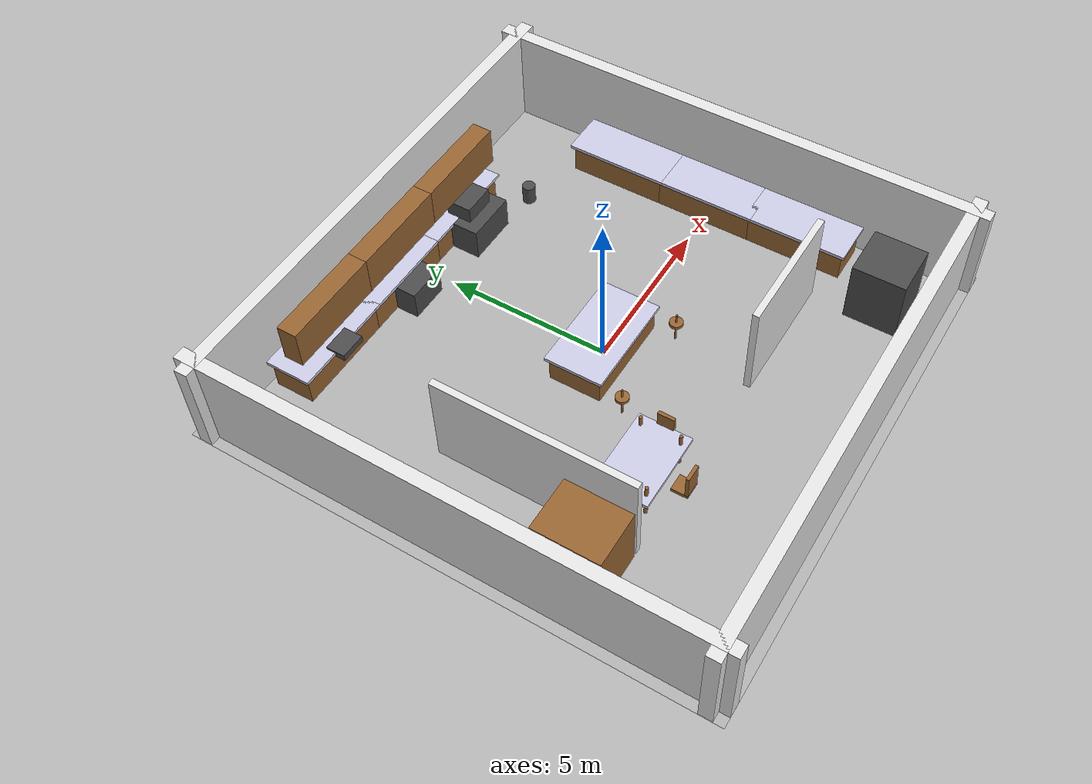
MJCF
<?xml version="1.0"?>
<mujoco model="kitchen_with_robot">
  <compiler angle="degree" coordinate="local" inertiafromgeom="true"/>
  <option timestep="0.002" gravity="0 0 -9.81" iterations="50" solver="PGS"/>

  <default>
    <joint armature="0.01" damping="0.1"/>
    <geom friction="0.9 0.1 0.1" density="1000" margin="0.001"/>
  </default>

  <!-- Note: Real Stretch robot model is loaded automatically by StretchMujocoSimulator -->

  <asset>
    <texture name="floor_tex" type="2d" builtin="checker" rgb1="0.8 0.8 0.8" rgb2="0.6 0.6 0.6" width="512" height="512"/>
    <texture name="wall_tex" type="2d" builtin="flat" rgb1="0.9 0.9 0.9" width="512" height="512"/>
    <texture name="cabinet_tex" type="2d" builtin="flat" rgb1="0.6 0.4 0.2" width="512" height="512"/>
    <texture name="counter_tex" type="2d" builtin="flat" rgb1="0.8 0.8 0.9" width="512" height="512"/>
    <texture name="appliance_tex" type="2d" builtin="flat" rgb1="0.3 0.3 0.3" width="512" height="512"/>

    <material name="floor_mat" texture="floor_tex" reflectance="0.1"/>
    <material name="wall_mat" texture="wall_tex" reflectance="0.1"/>
    <material name="cabinet_mat" texture="cabinet_tex" reflectance="0.1"/>
    <material name="counter_mat" texture="counter_tex" reflectance="0.1"/>
    <material name="appliance_mat" texture="appliance_tex" reflectance="0.1"/>
  </asset>

  <worldbody>
    <!-- Lighting -->
    <light name="main_light" pos="0 0 3" dir="0 0 -1" diffuse="1 1 1"/>
    <light name="ambient" pos="0 0 0" dir="0 0 -1" diffuse="0.3 0.3 0.3"/>

    <!-- Floor -->
    <geom name="floor" type="plane" size="8 8 0.1" material="floor_mat" pos="0 0 0"/>

    <!-- Walls -->
    <geom name="wall_north" type="box" size="8 0.2 1.5" pos="0 7.5 1.5" material="wall_mat"/>
    <geom name="wall_south" type="box" size="8 0.2 1.5" pos="0 -7.5 1.5" material="wall_mat"/>
    <geom name="wall_east" type="box" size="0.2 8 1.5" pos="7.5 0 1.5" material="wall_mat"/>
    <geom name="wall_west" type="box" size="0.2 8 1.5" pos="-7.5 0 1.5" material="wall_mat"/>

    <!-- Kitchen Island -->
    <geom name="island_base" type="box" size="1.5 0.8 0.4" pos="0 0 0.4" material="cabinet_mat"/>
    <geom name="island_top" type="box" size="1.6 0.9 0.05" pos="0 0 0.85" material="counter_mat"/>

    <!-- Lower Cabinets -->
    <geom name="cabinet_n1" type="box" size="1.5 0.6 0.45" pos="-4 6.5 0.45" material="cabinet_mat"/>
    <geom name="cabinet_n1_top" type="box" size="1.6 0.7 0.05" pos="-4 6.5 0.95" material="counter_mat"/>

    <geom name="cabinet_n2" type="box" size="1.5 0.6 0.45" pos="-1 6.5 0.45" material="cabinet_mat"/>
    <geom name="cabinet_n2_top" type="box" size="1.6 0.7 0.05" pos="-1 6.5 0.95" material="counter_mat"/>

    <geom name="cabinet_n3" type="box" size="1.5 0.6 0.45" pos="2 6.5 0.45" material="cabinet_mat"/>
    <geom name="cabinet_n3_top" type="box" size="1.6 0.7 0.05" pos="2 6.5 0.95" material="counter_mat"/>

    <!-- East wall cabinets -->
    <geom name="cabinet_e1" type="box" size="0.6 1.5 0.45" pos="6.5 3 0.45" material="cabinet_mat"/>
    <geom name="cabinet_e1_top" type="box" size="0.7 1.6 0.05" pos="6.5 3 0.95" material="counter_mat"/>

    <geom name="cabinet_e2" type="box" size="0.6 1.5 0.45" pos="6.5 0 0.45" material="cabinet_mat"/>
    <geom name="cabinet_e2_top" type="box" size="0.7 1.6 0.05" pos="6.5 0 0.95" material="counter_mat"/>

    <geom name="cabinet_e3" type="box" size="0.6 1.5 0.45" pos="6.5 -3 0.45" material="cabinet_mat"/>
    <geom name="cabinet_e3_top" type="box" size="0.7 1.6 0.05" pos="6.5 -3 0.95" material="counter_mat"/>

    <!-- Upper Cabinets -->
    <geom name="upper_cab_1" type="box" size="1.5 0.3 0.6" pos="-4 6.2 2.2" material="cabinet_mat"/>
    <geom name="upper_cab_2" type="box" size="1.5 0.3 0.6" pos="-1 6.2 2.2" material="cabinet_mat"/>
    <geom name="upper_cab_3" type="box" size="1.5 0.3 0.6" pos="2 6.2 2.2" material="cabinet_mat"/>

    <!-- Appliances -->
    <geom name="fridge" type="box" size="0.8 0.8 1.0" pos="5.5 -6 1.0" material="appliance_mat"/>
    <geom name="stove" type="box" size="0.8 0.8 0.5" pos="2 5.8 0.5" material="appliance_mat"/>
    <geom name="dishwasher" type="box" size="0.6 0.6 0.45" pos="-1 5.8 0.45" material="appliance_mat"/>
    <geom name="microwave" type="box" size="0.5 0.4 0.3" pos="2 5.8 1.2" material="appliance_mat"/>
    <geom name="sink" type="box" size="0.4 0.3 0.1" pos="-4 5.8 0.95" material="appliance_mat"/>

    <!-- Dining Table -->
    <geom name="table_top" type="box" size="1.2 0.8 0.05" pos="-3 -3 0.75" material="counter_mat"/>
    <geom name="table_leg_1" type="cylinder" size="0.05 0.75" pos="-3.9 -3.6 0.375" material="cabinet_mat"/>
    <geom name="table_leg_2" type="cylinder" size="0.05 0.75" pos="-2.1 -3.6 0.375" material="cabinet_mat"/>
    <geom name="table_leg_3" type="cylinder" size="0.05 0.75" pos="-3.9 -2.4 0.375" material="cabinet_mat"/>
    <geom name="table_leg_4" type="cylinder" size="0.05 0.75" pos="-2.1 -2.4 0.375" material="cabinet_mat"/>

    <!-- Dining Chairs -->
    <geom name="chair_1_seat" type="box" size="0.25 0.25 0.05" pos="-3 -4.2 0.45" material="cabinet_mat"/>
    <geom name="chair_1_back" type="box" size="0.25 0.05 0.4" pos="-3 -4.4 0.85" material="cabinet_mat"/>

    <geom name="chair_2_seat" type="box" size="0.25 0.25 0.05" pos="-2 -3 0.45" material="cabinet_mat"/>
    <geom name="chair_2_back" type="box" size="0.05 0.25 0.4" pos="-1.8 -3 0.85" material="cabinet_mat"/>

    <!-- Pantry -->
    <geom name="pantry" type="box" size="0.8 1.0 1.0" pos="-6 -3 1.0" material="cabinet_mat"/>

    <!-- Bar Stools -->
    <geom name="stool_1_seat" type="cylinder" size="0.2 0.05" pos="1.5 -1.5 0.65" material="cabinet_mat"/>
    <geom name="stool_1_leg" type="cylinder" size="0.03 0.65" pos="1.5 -1.5 0.325" material="cabinet_mat"/>

    <geom name="stool_2_seat" type="cylinder" size="0.2 0.05" pos="-1.5 -1.5 0.65" material="cabinet_mat"/>
    <geom name="stool_2_leg" type="cylinder" size="0.03 0.65" pos="-1.5 -1.5 0.325" material="cabinet_mat"/>

    <!-- Trash Can -->
    <geom name="trash_can" type="cylinder" size="0.2 0.3" pos="4 5 0.3" material="appliance_mat"/>

    <!-- Internal Walls for Room Division -->
    <geom name="internal_wall_1" type="box" size="0.1 3.0 1.5" pos="-5 -1 1.5" material="wall_mat"/>
    <geom name="internal_wall_2" type="box" size="2.0 0.1 1.5" pos="3 -4 1.5" material="wall_mat"/>

    <!-- Real Stretch Robot positioned safely in kitchen -->
    <!-- The actual robot model is included above with all its meshes and sensors -->
    <!-- Robot will be positioned at startup by the simulation system -->

  </worldbody>

  <!-- Actuators are already defined in the included Stretch robot model -->
</mujoco>
